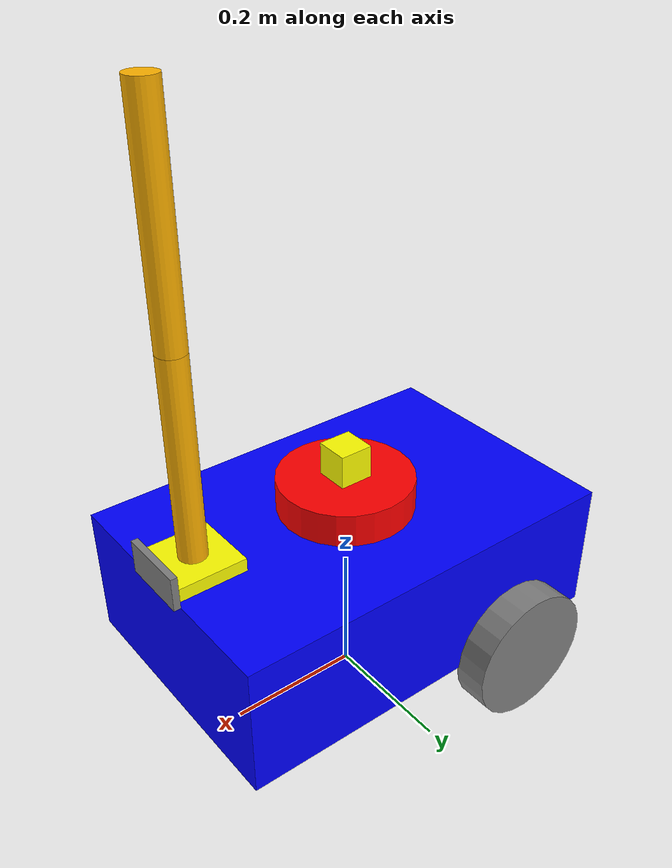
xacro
<?xml version="1.0"?>
<robot name="robot_firas" xmlns:xacro="http://www.ros.org/wiki/xacro">
    <xacro:include filename="common_urdf.xacro"/>
    <xacro:include filename="mobile_base.xacro"/>
    <xacro:include filename="mobile_base_gazebo.xacro"/>
    <xacro:include filename="camera.xacro"/>
    <xacro:include filename="arm.xacro"/>
    <xacro:include filename="arm_gazebo.xacro"/>

    <joint name="arm_robot" type="revolute">
        <origin xyz="${(base_lenth/2)- 0.05} 0.0 ${base_heigh}" rpy="0.0 0.0 0.0"/>
        <parent link="base_link"/>
        <child link="arm_base_link"/>
        <axis xyz="0.0 0.0 1.0"/>
        <limit lower="${-pi/2}" upper="${pi/2}" effort="0.0" velocity="0.0"/>
    </joint>

</robot>

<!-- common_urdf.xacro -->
<robot  xmlns:xacro="http://www.ros.org/wiki/xacro">
    <material name="green">
        <color rgba="1.0 1.0 0.0 1.0"/>
    </material>
    <material name="red">
        <color rgba="1.0 0.0 0.0 1.0"/>
    </material>
    <material name="blue">
        <color rgba="0.0 0.0 1.0 1.0"/>
    </material>
    <material name="grey">
        <color rgba="0.5 0.5 0.5 1.0"/>
    </material>
    <material name="orange">
        <color rgba="1 0.7 0 1.0"/>
    </material>
    <material name="yellow">
        <color rgba="1 1 0 1.0"/>
    </material>

    <xacro:macro name="box_inertia" params=" m l w h xyz rpy" >
        <inertial>
            <origin xyz="${xyz}" rpy="${rpy}"/>
            <mass value="${m}"/>
            <inertia ixx="${(m/12)*(h*h + l*l)}" ixy="0.0" ixz="0.0"
                     iyy="${(m/12)*(w*w + l*l)}" iyz="0.0"
                     izz="${(m/12)*(w*w + h*h)}"/>
        </inertial>
    </xacro:macro>

    <xacro:macro name="wheel_inertia" params="m r h xyz rpy" >
        <inertial>
            <origin xyz="${xyz}" rpy="${rpy}"/>
            <mass value="${m}"/>
            <inertia ixx="${(m/12)*(3*r*r + h*h)}" ixy="0.0" ixz="0.0"
                     iyy="${(m/12)*(3*r*r + h*h)}" iyz="0.0"
                     izz="${(m/2)*(r*r)}"/>
        </inertial>
    </xacro:macro>

    <xacro:macro name="sphere_inertia" params="m r xyz rpy" >
        <inertial>
            <origin xyz="${xyz}" rpy="${rpy}"/>
            <mass value="${m}"/>
            <inertia ixx="${(m/5)*(2*r*r)}" ixy="0.0" ixz="0.0"
                     iyy="${(m/5)*(2*r*r)}" iyz="0.0"
                     izz="${(m/5)*(2*r*r)}"/>
        </inertial>
    </xacro:macro>

</robot>

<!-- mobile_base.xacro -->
<robot xmlns:xacro="http://www.ros.org/wiki/xacro">

    <xacro:property name="base_lenth" value="0.6" />
    <xacro:property name="base_width" value="0.4" />
    <xacro:property name="base_heigh" value="0.2" />
    <xacro:property name="wheel_radius" value="0.1" />
    <xacro:property name="wheel_heigh" value="0.05" />
    <xacro:property name="caster_wheel_radius" value="0.05" />

    <link name="base_footprint">
    </link>

    <link name="base_link">
        <visual>
                <geometry>
                    <box size=" ${base_lenth} ${base_width} ${base_heigh}"/>
                </geometry>
                <origin xyz="0.0 0.0 0.1" rpy="0.0 0.0 0.0"/>
                <material name="blue"/>
        </visual>
        <collision>
            <geometry>
                    <box size=" ${base_lenth} ${base_width} ${base_heigh}"/>
                </geometry>
                <origin xyz="0.0 0.0 0.1" rpy="0.0 0.0 0.0"/>

        </collision>
        <xacro:box_inertia m="5.0"  l="${2*base_lenth}" w="${2*base_width}" h="${2*base_heigh}"
                           xyz="0.0 0.0 0.1"  rpy="0.0 0.0 0.0"/>

    </link>

    <link name="lidar_link">
        <visual>
            <geometry>
                <cylinder radius="0.1" length="0.05"/>
            </geometry>
            <origin xyz="0.0 0.0 0.025" rpy="0.0 0.0 0.0"/>
            <material name="red"/>
        </visual>

    </link>
    <link name="box_link">
        <visual>
            <geometry>
                <box size="0.05 0.05 0.05"/>
            </geometry>
            <origin xyz="0.0 0.0 0.025" rpy="0.0 0.0 0.0"/>
            <material name="green"/>
        </visual>
    </link>

    <link name="right_wheel_link">
        <visual>
            <geometry>
                <cylinder radius="0.1" length="0.05"/>
            </geometry>
            <material name="grey"/>
            <origin xyz="0.0 -0.0225 0" rpy="${pi/2.0} 0.0 0.0"/>
        </visual>
        <collision>
            <geometry>
                <cylinder radius="0.1" length="0.05"/>
            </geometry>
            <origin xyz="0.0 -0.0225 0" rpy="${pi/2.0} 0.0 0.0"/>

        </collision>

        <xacro:wheel_inertia m="1.0"  r="${2*wheel_radius}" h="${2*wheel_heigh}"
                             xyz="0.0 -0.0225 0"  rpy="${pi/2.0} 0.0 0.0"/>
    </link>

    <link name="left_wheel_link">
        <visual>
            <geometry>
                <cylinder radius="0.1" length="0.05"/>
            </geometry>
            <material name="grey"/>
            <origin xyz="0.0 0.0225 0" rpy="${pi/2.0} 0.0 0.0"/>
        </visual>
        <collision>
            <geometry>
                <cylinder radius="0.1" length="0.05"/>
            </geometry>
            <origin xyz="0.0 0.0225 0" rpy="${pi/2.0} 0.0 0.0"/>

        </collision>

        <xacro:wheel_inertia m="1.0"  r="${2*wheel_radius}" h="${2*wheel_heigh}"
                             xyz="0.0  0.0225 0"  rpy="${pi/2.0} 0.0 0.0"/>
    </link>

    <link name="caster_link">
        <visual>
            <geometry>
                <sphere radius="0.05"/>
            </geometry>
            <material name="grey"/>
            <origin xyz="0.0 0.0 0" rpy="0.0 0.0 0.0"/>
        </visual>
        <collision>
            <geometry>
                <sphere radius="0.05"/>
            </geometry>
            <origin xyz="0.0 0.0 0" rpy="0.0 0.0 0.0"/>

        </collision>

        <xacro:sphere_inertia m="0.5"  r="${2*caster_wheel_radius}"
                             xyz="0.0 0.0 0"  rpy="0.0 0.0 0.0"/>

    </link>

    <joint name="base_joint" type="fixed">
        <parent link="base_footprint"/>
        <child link="base_link"/>
        <origin xyz="0.0 0.0 0.1" rpy="0.0 0.0 0.0"/>

    </joint>

    <joint name="base_lidar" type="fixed">
        <parent link="base_link"/>
        <child link="lidar_link"/>
        <origin xyz="0.0 0.0 0.2" rpy="0.0 0.0 0.0"/>

    </joint>
    <joint name="lidar_box" type="fixed">
        <parent link="lidar_link"/>
        <child link="box_link"/>
        <origin xyz="0.0 0.0 0.05" rpy="0.0 0.0 0.0"/>

    </joint>
    <joint name="base_right_wheel" type="continuous">
        <origin xyz="${-base_lenth/4.0} -0.2 0.0" rpy="0 0.0 0.0"/>
        <parent link="base_link"/>
        <child link="right_wheel_link"/>
        <axis xyz="0.0 1.0 0.0"/>
    </joint>
    <joint name="base_left_wheel" type="continuous">
        <origin xyz="${-base_lenth/4.0} 0.2 0.0" rpy="0 0.0 0.0"/>
        <parent link="base_link"/>
        <child link="left_wheel_link"/>
        <axis xyz="0.0 1.0 0.0"/>
    </joint>

    <joint name="caster_link" type="fixed">
        <parent link="base_link"/>
        <child link="caster_link"/>
        <origin xyz="0.15 0.0 -0.05" rpy="0.0 0.0 0.0"/>

    </joint>

</robot>

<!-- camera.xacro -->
<robot xmlns:xacro="http://www.ros.org/wiki/xacro">
    <xacro:property name="camera_length" value="0.01"/>
    <xacro:property name="camera_witdh" value="0.1"/>
    <xacro:property name="camera_height" value="0.05"/>

    <link name="camera_link">
        <visual>
            <geometry>
                <box size="${camera_length} ${camera_witdh} ${camera_height}"/>
            </geometry>
            <material name="grey"/>

        </visual>
        <collision>
            <geometry>
                <box size="${camera_length} ${camera_witdh} ${camera_height}"/>
            </geometry>

        </collision>
        <xacro:box_inertia m="0.1" l="${camera_length}" w="${camera_witdh}" h="${camera_height}"
                           xyz="0 0 0" rpy= "0 0 0"/>

    </link>
    <joint name="base_camera_joint" type="fixed">
        <origin xyz="${(base_lenth+camera_length)/2} 0.0 ${base_heigh+0.025}" rpy="0.0 0.0 0.0"/>
        <parent link="base_link"/>
        <child link="camera_link"/>

    </joint>
    <joint name="camera_optical_joint" type="fixed">
        <!-- these values have to be these values otherwise the gazebo camera
            image won't be aligned properly with the frame it is supposedly
            originating from -->
        <origin xyz="0 0 0" rpy="${-pi/2} 0 ${-pi/2}"/>
        <parent link="camera_link"/>
        <child link="camera_link_optical"/>
    </joint>

    <link name="camera_link_optical">
    </link>
    <gazebo reference="camera_link">
        <material>Gazebo/Red</material>
        <sensor name="camera_sensor" type="camera">
            <pose>0 0 0 0 0 0 </pose>
            <visualize>true</visualize>
            <update_rate>20.0</update_rate>
            <plugin name="camera_controller" filename="libgazebo_ros_camera.so">

                <!-- Set TF frame name. If empty, defaults to link name -->
                <frame_name>camera_link_optical</frame_name>

            </plugin>
        </sensor>
    </gazebo>

</robot>

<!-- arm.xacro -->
<robot name="robot_firas" xmlns:xacro="http://www.ros.org/wiki/xacro">

    <xacro:property name="arm_base_lenth" value="0.1" />
    <xacro:property name="arm_base_width" value="0.1" />
    <xacro:property name="arm_base_heigh" value="0.02" />
    <xacro:property name="arm_cylindre_radius" value="0.02" />
    <xacro:property name="arm_cylindre_lenght" value="0.3" />

    <link name="arm_base_link">

        <visual>

            <geometry>
                <box size="${arm_base_lenth} ${arm_base_width} ${arm_base_heigh}"/>
            </geometry>
            <origin xyz="0.0 0.0 ${arm_base_heigh}" rpy="0.0 0.0 0.0"/>
            <material name="yellow"/>
        </visual>
        <collision>
            <geometry>
                <box size="${arm_base_lenth} ${arm_base_width} ${arm_base_heigh}"/>
            </geometry>
            <origin xyz="0.0 0.0 ${arm_base_heigh}" rpy="0.0 0.0 0.0"/>

        </collision>
        <xacro:box_inertia m="0.5"  l="${2*arm_base_lenth}" w="${2*arm_base_width}" h="${2*arm_base_heigh}"
                           xyz="0.0 0.0 ${arm_base_heigh}"  rpy="0.0 0.0 0.0"/>

    </link>
    <link name="forearm_link">

        <visual>

            <geometry>
                <cylinder radius="0.02" length="0.3"/>
            </geometry>
            <material name="orange"/>
            <origin xyz="0.0 0.0 ${arm_cylindre_lenght/2}" rpy="0.0 0.0 0.0"/>
        </visual>
        <collision>
            <geometry>
                    <cylinder radius="0.02" length="0.3"/>
                </geometry>

                <origin xyz="0.0 0.0 ${arm_cylindre_lenght/2}" rpy="0.0 0.0 0.0"/>

        </collision>
        <xacro:wheel_inertia m="0.3"  r="${2*arm_cylindre_radius}" h="${2*arm_cylindre_lenght}"
                             xyz="0.0 0.0 ${arm_cylindre_lenght/2}"  rpy="0.0 0.0 0.0"/>

    </link>
    <link name="hand_link">

        <visual>

            <geometry>
                <cylinder radius="0.02" length="0.3"/>
            </geometry>
            <material name="orange"/>
            <origin xyz="0.0 0.0 ${arm_cylindre_lenght/2}" rpy="0.0 0.0 0.0"/>
        </visual>
        <collision>
            <geometry>
                <cylinder radius="0.02" length="0.3"/>
            </geometry>
            <origin xyz="0.0 0.0 ${arm_cylindre_lenght/2}" rpy="0.0 0.0 0.0"/>

        </collision>
        <xacro:wheel_inertia m="0.3"  r="${2*arm_cylindre_radius}" h="${2*arm_cylindre_lenght}"
                             xyz="0.0 0.0 ${arm_cylindre_lenght/2}"  rpy="0.0 0.0 0.0"/>

    </link>

    <joint name="base_arm_joint" type="revolute">
        <origin xyz="0.0 0.0 ${arm_base_heigh}" rpy="0.0 0.0 0.0"/>
        <parent link="arm_base_link"/>
        <child link="forearm_link"/>
        <axis xyz="0.0 1.0 0.0"/>
        <limit lower="0.0" upper="${pi/2}" effort="100.0" velocity="100.0"/>
        <dynamics friction="0.05" damping="0.1" />

    </joint>

    <joint name="hand_arm_joint" type="revolute">
        <origin xyz="0.0 0.0 ${arm_cylindre_lenght}" rpy="0.0 0.0 0.0"/>
        <parent link="forearm_link"/>
        <child link="hand_link"/>
        <axis xyz="0.0 1.0 0.0"/>
        <limit lower="0.0" upper="${pi/2}" effort="100.0" velocity="100.0"/>
        <dynamics friction="0.05" damping="0.1" />

    </joint>

</robot>
